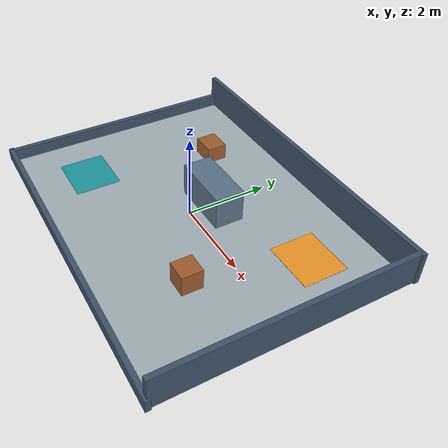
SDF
<sdf version="1.9">
  <world name="delivery_room">
    <physics name="fixed_1ms" type="ignored">
      <max_step_size>0.001</max_step_size>
      <real_time_factor>1.0</real_time_factor>
    </physics>
    <gravity>0 0 -9.81</gravity>
    <plugin filename="gz-sim-physics-system" name="gz::sim::systems::Physics" />
    <plugin filename="gz-sim-user-commands-system" name="gz::sim::systems::UserCommands" />
    <plugin filename="gz-sim-scene-broadcaster-system" name="gz::sim::systems::SceneBroadcaster" />
    <light name="sun" type="directional">
      <pose>0 0 8 0 0 0</pose>
      <diffuse>0.95 0.95 0.95 1</diffuse>
      <specular>0.2 0.2 0.2 1</specular>
      <direction>-0.4 0.2 -0.9</direction>
      <cast_shadows>true</cast_shadows>
      <attenuation>
        <range>100</range>
        <constant>0.9</constant>
        <linear>0.01</linear>
        <quadratic>0.001</quadratic>
      </attenuation>
    </light>
    <model name="floor">
      <static>true</static>
      <pose>0 0 -0.05 0 0 0</pose>
      <link name="body">
        <collision name="collision">
          <geometry>
            <box>
              <size>8 6 0.1</size>
            </box>
          </geometry>
        </collision>
        <visual name="visual">
          <geometry>
            <box>
              <size>8 6 0.1</size>
            </box>
          </geometry>
          <material>
            <ambient>0.65 0.70 0.73 1</ambient>
            <diffuse>0.65 0.70 0.73 1</diffuse>
          </material>
        </visual>
      </link>
    </model>
    <model name="north_wall">
      <static>true</static>
      <pose>0 3 0.4 0 0 0</pose>
      <link name="body">
        <collision name="collision">
          <geometry>
            <box>
              <size>8.2 0.12 0.8</size>
            </box>
          </geometry>
        </collision>
        <visual name="visual">
          <geometry>
            <box>
              <size>8.2 0.12 0.8</size>
            </box>
          </geometry>
          <material>
            <ambient>0.25 0.33 0.42 1</ambient>
            <diffuse>0.25 0.33 0.42 1</diffuse>
          </material>
        </visual>
      </link>
    </model>
    <model name="south_wall">
      <static>true</static>
      <pose>0 -3 0.15 0 0 0</pose>
      <link name="body">
        <collision name="collision">
          <geometry>
            <box>
              <size>8.2 0.12 0.3</size>
            </box>
          </geometry>
        </collision>
        <visual name="visual">
          <geometry>
            <box>
              <size>8.2 0.12 0.3</size>
            </box>
          </geometry>
          <material>
            <ambient>0.25 0.33 0.42 1</ambient>
            <diffuse>0.25 0.33 0.42 1</diffuse>
          </material>
        </visual>
      </link>
    </model>
    <model name="east_wall">
      <static>true</static>
      <pose>4 0 0.4 0 0 0</pose>
      <link name="body">
        <collision name="collision">
          <geometry>
            <box>
              <size>0.12 6 0.8</size>
            </box>
          </geometry>
        </collision>
        <visual name="visual">
          <geometry>
            <box>
              <size>0.12 6 0.8</size>
            </box>
          </geometry>
          <material>
            <ambient>0.25 0.33 0.42 1</ambient>
            <diffuse>0.25 0.33 0.42 1</diffuse>
          </material>
        </visual>
      </link>
    </model>
    <model name="west_wall">
      <static>true</static>
      <pose>-4 0 0.15 0 0 0</pose>
      <link name="body">
        <collision name="collision">
          <geometry>
            <box>
              <size>0.12 6 0.3</size>
            </box>
          </geometry>
        </collision>
        <visual name="visual">
          <geometry>
            <box>
              <size>0.12 6 0.3</size>
            </box>
          </geometry>
          <material>
            <ambient>0.25 0.33 0.42 1</ambient>
            <diffuse>0.25 0.33 0.42 1</diffuse>
          </material>
        </visual>
      </link>
    </model>
    <model name="pickup_pad">
      <static>true</static>
      <pose>-2.5 -1.5 0.002 0 0 0</pose>
      <link name="body">
        <visual name="visual">
          <geometry>
            <box>
              <size>1.25 1.1 0.004</size>
            </box>
          </geometry>
          <material>
            <ambient>0.12 0.60 0.63 1</ambient>
            <diffuse>0.12 0.60 0.63 1</diffuse>
          </material>
        </visual>
      </link>
    </model>
    <model name="delivery_pad">
      <static>true</static>
      <pose>2.5 1.5 0.002 0 0 0</pose>
      <link name="body">
        <visual name="visual">
          <geometry>
            <box>
              <size>1.25 1.1 0.004</size>
            </box>
          </geometry>
          <material>
            <ambient>0.94 0.60 0.15 1</ambient>
            <diffuse>0.94 0.60 0.15 1</diffuse>
          </material>
        </visual>
      </link>
    </model>
    <model name="sorting_table">
      <static>true</static>
      <pose>0 0.6 0.4 0 0 0</pose>
      <link name="body">
        <collision name="collision">
          <geometry>
            <box>
              <size>1.5 0.7 0.8</size>
            </box>
          </geometry>
        </collision>
        <visual name="visual">
          <geometry>
            <box>
              <size>1.5 0.7 0.8</size>
            </box>
          </geometry>
          <material>
            <ambient>0.37 0.46 0.55 1</ambient>
            <diffuse>0.37 0.46 0.55 1</diffuse>
          </material>
        </visual>
      </link>
    </model>
    <model name="crate_a">
      <static>true</static>
      <pose>1.9 -1.1 0.25 0 0 0</pose>
      <link name="body">
        <collision name="collision">
          <geometry>
            <box>
              <size>0.5 0.5 0.5</size>
            </box>
          </geometry>
        </collision>
        <visual name="visual">
          <geometry>
            <box>
              <size>0.5 0.5 0.5</size>
            </box>
          </geometry>
          <material>
            <ambient>0.63 0.37 0.19 1</ambient>
            <diffuse>0.63 0.37 0.19 1</diffuse>
          </material>
        </visual>
      </link>
    </model>
    <model name="crate_b">
      <static>true</static>
      <pose>-1.8 1.6 0.2 0 0 0</pose>
      <link name="body">
        <collision name="collision">
          <geometry>
            <box>
              <size>0.6 0.5 0.4</size>
            </box>
          </geometry>
        </collision>
        <visual name="visual">
          <geometry>
            <box>
              <size>0.6 0.5 0.4</size>
            </box>
          </geometry>
          <material>
            <ambient>0.63 0.37 0.19 1</ambient>
            <diffuse>0.63 0.37 0.19 1</diffuse>
          </material>
        </visual>
      </link>
    </model>
  <plugin filename="gz-sim-sensors-system" name="gz::sim::systems::Sensors"><render_engine>ogre2</render_engine></plugin><plugin filename="gz-sim-imu-system" name="gz::sim::systems::Imu" /></world>
</sdf>
